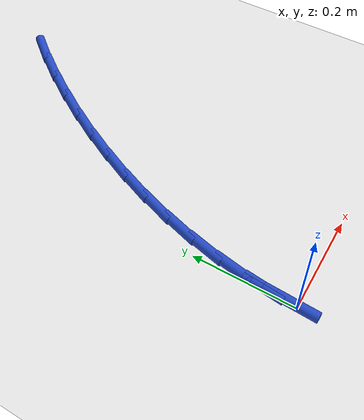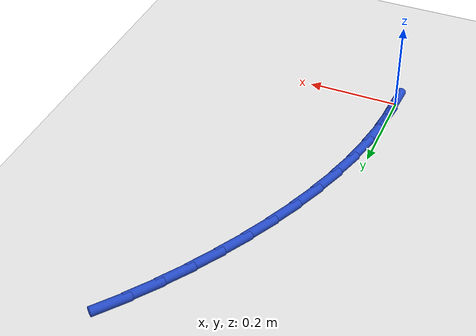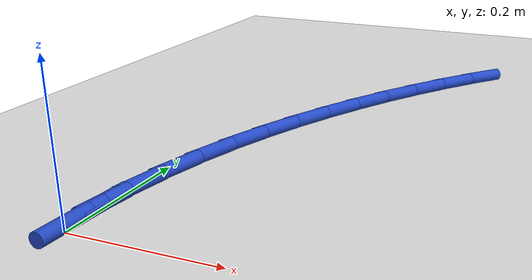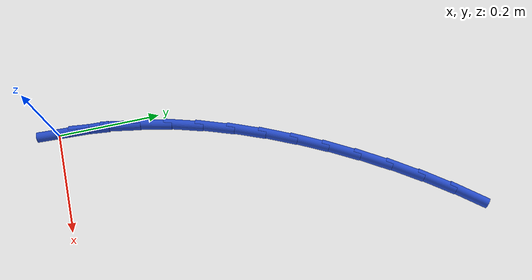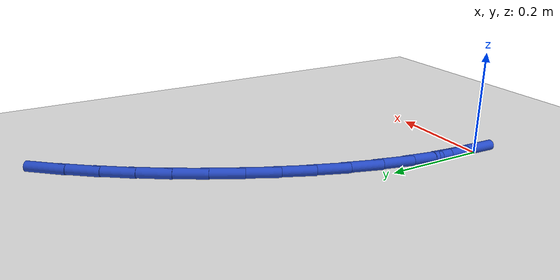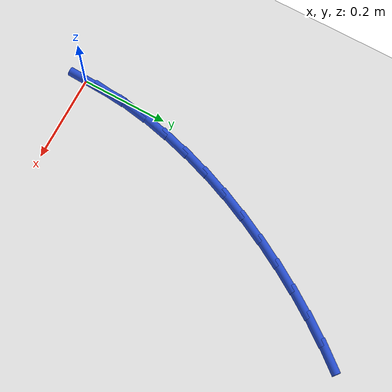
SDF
<sdf version="1.6">
 <world name="default">
  <model name="ground_plane">
   <static>1</static>
   <link name="link">
    <collision name="collision">
     <geometry><plane><normal>0 0 1</normal><size>100 100</size></plane></geometry>
     <surface><friction><ode><mu>100</mu><mu2>50</mu2></ode></friction></surface>
    </collision>
    <visual name="visual">
     <cast_shadows>0</cast_shadows>
     <geometry><plane><normal>0 0 1</normal><size>100 100</size></plane></geometry>
     <material>
      <script><uri>file://media/materials/scripts/gazebo.material</uri><name>Gazebo/WhiteGlow</name></script>
     </material>
    </visual>
   </link>
  </model>
  <model name="line">
   <link name="link_0">
    <pose>-6.245004513516506e-17 1.3877787807814457e-17 0.01 0 1.57 1.5259627222604275</pose>
    <collision name="collision">
     <geometry><cylinder><radius>0.01</radius><length>0.08</length></cylinder></geometry>
    </collision>
    <visual name="visual">
     <material>
      <script><name>Gazebo/Blue</name><uri>file://media/materials/scripts/gazebo.material</uri></script>
     </material>
     <geometry><cylinder><radius>0.01</radius><length>0.08</length></cylinder></geometry>
    </visual>
   </link>
   <link name="link_1">
    <pose>0.0028183309573836116 0.06281989598772326 0.01 0 1.57 1.4595115524525468</pose>
    <collision name="collision">
     <geometry><cylinder><radius>0.01</radius><length>0.08</length></cylinder></geometry>
    </collision>
    <visual name="visual">
     <material>
      <script><name>Gazebo/Blue</name><uri>file://media/materials/scripts/gazebo.material</uri></script>
     </material>
     <geometry><cylinder><radius>0.01</radius><length>0.08</length></cylinder></geometry>
    </visual>
   </link>
   <link name="link_2">
    <pose>0.009761499285508062 0.12495312653565038 0.01 0 1.57 1.396148895417826</pose>
    <collision name="collision">
     <geometry><cylinder><radius>0.01</radius><length>0.08</length></cylinder></geometry>
    </collision>
    <visual name="visual">
     <material>
      <script><name>Gazebo/Blue</name><uri>file://media/materials/scripts/gazebo.material</uri></script>
     </material>
     <geometry><cylinder><radius>0.01</radius><length>0.08</length></cylinder></geometry>
    </visual>
   </link>
   <link name="link_3">
    <pose>0.020600857136667688 0.18638504478830278 0.01 0 1.57 1.3362627642682738</pose>
    <collision name="collision">
     <geometry><cylinder><radius>0.01</radius><length>0.08</length></cylinder></geometry>
    </collision>
    <visual name="visual">
     <material>
      <script><name>Gazebo/Blue</name><uri>file://media/materials/scripts/gazebo.material</uri></script>
     </material>
     <geometry><cylinder><radius>0.01</radius><length>0.08</length></cylinder></geometry>
    </visual>
   </link>
   <link name="link_4">
    <pose>0.03510775666315683 0.2471010038902018 0.01 0 1.57 1.2801015524722088</pose>
    <collision name="collision">
     <geometry><cylinder><radius>0.01</radius><length>0.08</length></cylinder></geometry>
    </collision>
    <visual name="visual">
     <material>
      <script><name>Gazebo/Blue</name><uri>file://media/materials/scripts/gazebo.material</uri></script>
     </material>
     <geometry><cylinder><radius>0.01</radius><length>0.08</length></cylinder></geometry>
    </visual>
   </link>
   <link name="link_5">
    <pose>0.05305355001726991 0.30708635698586884 0.01 0 1.57 1.2277894431422187</pose>
    <collision name="collision">
     <geometry><cylinder><radius>0.01</radius><length>0.08</length></cylinder></geometry>
    </collision>
    <visual name="visual">
     <material>
      <script><name>Gazebo/Blue</name><uri>file://media/materials/scripts/gazebo.material</uri></script>
     </material>
     <geometry><cylinder><radius>0.01</radius><length>0.08</length></cylinder></geometry>
    </visual>
   </link>
   <link name="link_6">
    <pose>0.0742095893513013 0.36632645721982526 0.01 0 1.57 1.1793480738513897</pose>
    <collision name="collision">
     <geometry><cylinder><radius>0.01</radius><length>0.08</length></cylinder></geometry>
    </collision>
    <visual name="visual">
     <material>
      <script><name>Gazebo/Blue</name><uri>file://media/materials/scripts/gazebo.material</uri></script>
     </material>
     <geometry><cylinder><radius>0.01</radius><length>0.08</length></cylinder></geometry>
    </visual>
   </link>
   <link name="link_7">
    <pose>0.09834722681754539 0.42480665773659254 0.01 0 1.57 1.1347202685754982</pose>
    <collision name="collision">
     <geometry><cylinder><radius>0.01</radius><length>0.08</length></cylinder></geometry>
    </collision>
    <visual name="visual">
     <material>
      <script><name>Gazebo/Blue</name><uri>file://media/materials/scripts/gazebo.material</uri></script>
     </material>
     <geometry><cylinder><radius>0.01</radius><length>0.08</length></cylinder></geometry>
    </visual>
   </link>
   <link name="link_8">
    <pose>0.12523781456829644 0.48251231168069164 0.01 0 1.57 1.0936031552145529</pose>
    <collision name="collision">
     <geometry><cylinder><radius>0.01</radius><length>0.08</length></cylinder></geometry>
    </collision>
    <visual name="visual">
     <material>
      <script><name>Gazebo/Blue</name><uri>file://media/materials/scripts/gazebo.material</uri></script>
     </material>
     <geometry><cylinder><radius>0.01</radius><length>0.08</length></cylinder></geometry>
    </visual>
   </link>
   <link name="link_9">
    <pose>0.15466143376394187 0.5394192002806657 0.01 0 1.57 1.0538294375644073</pose>
    <collision name="collision">
     <geometry><cylinder><radius>0.01</radius><length>0.08</length></cylinder></geometry>
    </collision>
    <visual name="visual">
     <material>
      <script><name>Gazebo/Blue</name><uri>file://media/materials/scripts/gazebo.material</uri></script>
     </material>
     <geometry><cylinder><radius>0.01</radius><length>0.08</length></cylinder></geometry>
    </visual>
   </link>
   <link name="link_10">
    <pose>0.1864901227571407 0.5954022678190118 0.01 0 1.57 1.0139708444166662</pose>
    <collision name="collision">
     <geometry><cylinder><radius>0.01</radius><length>0.08</length></cylinder></geometry>
    </collision>
    <visual name="visual">
     <material>
      <script><name>Gazebo/Blue</name><uri>file://media/materials/scripts/gazebo.material</uri></script>
     </material>
     <geometry><cylinder><radius>0.01</radius><length>0.08</length></cylinder></geometry>
    </visual>
   </link>
   <link name="link_11">
    <pose>0.22065101977351928 0.650276038041453 0.01 0 1.57 0.9737750405580868</pose>
    <collision name="collision">
     <geometry><cylinder><radius>0.01</radius><length>0.08</length></cylinder></geometry>
    </collision>
    <visual name="visual">
     <material>
      <script><name>Gazebo/Blue</name><uri>file://media/materials/scripts/gazebo.material</uri></script>
     </material>
     <geometry><cylinder><radius>0.01</radius><length>0.08</length></cylinder></geometry>
    </visual>
   </link>
   <link name="link_12">
    <pose>0.25707200884992726 0.7038542168639765 0.01 0 1.57 0.9330106102518033</pose>
    <collision name="collision">
     <geometry><cylinder><radius>0.01</radius><length>0.08</length></cylinder></geometry>
    </collision>
    <visual name="visual">
     <material>
      <script><name>Gazebo/Blue</name><uri>file://media/materials/scripts/gazebo.material</uri></script>
     </material>
     <geometry><cylinder><radius>0.01</radius><length>0.08</length></cylinder></geometry>
    </visual>
   </link>
   <link name="link_13">
    <pose>0.29568097402321436 0.7559505102025713 0.01 0 1.57 0.8914494224177847</pose>
    <collision name="collision">
     <geometry><cylinder><radius>0.01</radius><length>0.08</length></cylinder></geometry>
    </collision>
    <visual name="visual">
     <material>
      <script><name>Gazebo/Blue</name><uri>file://media/materials/scripts/gazebo.material</uri></script>
     </material>
     <geometry><cylinder><radius>0.01</radius><length>0.08</length></cylinder></geometry>
    </visual>
   </link>
   <link name="link_121">
    <pose>0.0028748415048898794 0.06273898612357584 0.01 0 1.57 1.5250061071503602</pose>
    <collision name="collision">
     <geometry><cylinder><radius>0.01</radius><length>0.08</length></cylinder></geometry>
    </collision>
    <visual name="visual">
     <material>
      <script><name>Gazebo/Blue</name><uri>file://media/materials/scripts/gazebo.material</uri></script>
     </material>
     <geometry><cylinder><radius>0.01</radius><length>0.08</length></cylinder></geometry>
    </visual>
   </link>
  </model>
 </world>
</sdf>
